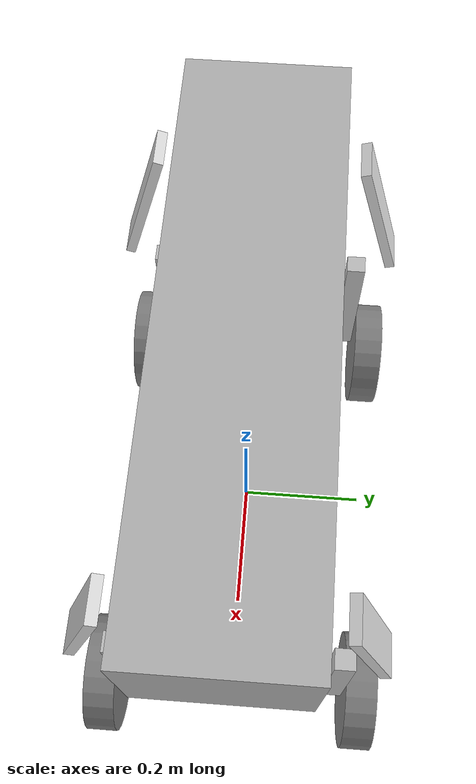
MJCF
<mujoco model="m1_wheeled_sym">
  <compiler angle="radian" autolimits="true" />
  <worldbody>
    <body name="base_link" pos="0 0 0.5">
      <inertial pos="-0.001406 0 -0.004835" quat="4.857226e-15 0.99999994 -1.9917973e-18 0.00035909666" mass="17.033" diaginertia="0.092882565 0.6618583 0.69585856" />
      <freejoint />
      <site name="imu" pos="0.0 0 0.0" />
      <body name="FAR_ABAD_LINK" pos="0.2698 -0.065 0">
        <inertial pos="0.033776 -0.02146 9.6941e-07" quat="0.351949 0.351975 0.613287 0.613289" mass="0.19789" diaginertia="0.00025478 0.00020921 0.00011958" />
        <joint name="FAR_ABAD_JOINT" pos="0 0 0" axis="1 0 0" range="-0.697 0.523" actuatorfrcrange="-150 150" damping="0.05" armature="0.01" />
        <body name="FAR_HIP_LINK" pos="0.0587 -0.045 0">
          <inertial pos="-3.2e-05 -0.065021 -0.128154" quat="0.703257 -0.0677607 0.068164 0.704409" mass="2.8754" diaginertia="0.0456037 0.045202 0.00275532" />
          <joint name="FAR_HIP_JOINT" pos="0 0 0" axis="0 1 0" range="-2.442 2.791" actuatorfrcrange="-150 150" damping="0.05" armature="0.01" />
          <geom size="0.03 0.0075 0.11" pos="0 -0.07 -0.1" quat="0.988771 -0.149438 0 0" type="box" rgba="0.84706 0.84706 0.84706 1" />
          <body name="FAR_KNEE_LINK" pos="0 -0.0522 -0.26">
            <inertial pos="1.1e-05 0.004286 -0.115691" quat="0.707101 -0.000811046 0.000666189 0.707112" mass="0.86312" diaginertia="0.01053 0.01024 0.000477956" />
            <joint name="FAR_KNEE_JOINT" pos="0 0 0" axis="0 1 0" range="-2.791 2.791" actuatorfrcrange="-150 150" damping="0.05" armature="0.01" />
            <geom size="0.015 0.015 0.11" pos="0.005 0 -0.09" quat="0.99995 0 -0.00999983 0" type="box" rgba="0.75294 0.75294 0.75294 1" />
            <body name="FAR_FOOT_LINK" pos="0 -0.0088 -0.28">
              <inertial pos="0 -0.039394 4.2e-05" quat="0.5 0.5 0.5 0.5" mass="1.5113" diaginertia="0.004202 0.002606 0.002603" />
              <joint name="FAR_FOOT_JOINT" pos="0 0 0" axis="0 1 0" range="-99999 99999" actuatorfrcrange="-40 40" damping="0.05" armature="0.01" />
              <geom name="FAR_wheel" type="cylinder" size="0.096 0.025" quat="0.7071068 0.7071068 0 0" pos="0 -0.0394 0" friction="0.8 0.02 0.01" condim="6" priority="1" solref="0.05 1" />
            </body>
          </body>
        </body>
      </body>
      <body name="FBL_ABAD_LINK" pos="0.2698 0.065 0">
        <inertial pos="0.033776 0.02146 9.6941e-07" quat="0.351949 -0.351975 0.613287 -0.613289" mass="0.19789" diaginertia="0.00025478 0.00020921 0.00011958" />
        <joint name="FBL_ABAD_JOINT" pos="0 -0 0" axis="1 0 0" range="-0.523 0.697" actuatorfrcrange="-150 150" damping="0.05" armature="0.01" />
        <body name="FBL_HIP_LINK" pos="0.0587 0.045 0">
          <inertial pos="-3.2e-05 0.065021 -0.128154" quat="0.703257 0.0677607 0.068164 -0.704409" mass="2.8754" diaginertia="0.0456037 0.045202 0.00275532" />
          <joint name="FBL_HIP_JOINT" pos="0 -0 0" axis="0 1 0" range="-2.442 2.791" actuatorfrcrange="-150 150" damping="0.05" armature="0.01" />
          <geom size="0.03 0.0075 0.11" pos="0 0.07 -0.1" quat="0.988771 0.149438 0 -0" type="box" rgba="0.84706 0.84706 0.84706 1" />
          <body name="FBL_KNEE_LINK" pos="0 0.0522 -0.26">
            <inertial pos="1.1e-05 -0.004286 -0.115691" quat="0.707101 0.000811046 0.000666189 -0.707112" mass="0.86312" diaginertia="0.01053 0.01024 0.000477956" />
            <joint name="FBL_KNEE_JOINT" pos="0 -0 0" axis="0 1 0" range="-2.791 2.791" actuatorfrcrange="-150 150" damping="0.05" armature="0.01" />
            <geom size="0.015 0.015 0.11" pos="0.005 -0 -0.09" quat="0.99995 -0 -0.00999983 -0" type="box" rgba="0.75294 0.75294 0.75294 1" />
            <body name="FBL_FOOT_LINK" pos="0 0.0088 -0.28">
              <inertial pos="0 0.039394 4.2e-05" quat="0.5 -0.5 0.5 -0.5" mass="1.5113" diaginertia="0.004202 0.002606 0.002603" />
              <joint name="FBL_FOOT_JOINT" pos="0 -0 0" axis="0 1 0" range="-99999 99999" actuatorfrcrange="-40 40" damping="0.05" armature="0.01" />
              <geom name="FBL_wheel" type="cylinder" size="0.096 0.025" quat="0.7071068 -0.7071068 0 -0" pos="0 0.0394 0" friction="0.8 0.02 0.01" condim="6" priority="1" solref="0.05 1" />
            </body>
          </body>
        </body>
      </body>
      <body name="RAR_ABAD_LINK" pos="-0.2698 -0.065 0">
        <inertial pos="-0.033776 -0.02146 9.6918e-07" quat="0.351949 -0.351975 0.613287 -0.613289" mass="0.19789" diaginertia="0.00025478 0.00020921 0.00011958" />
        <joint name="RAR_ABAD_JOINT" pos="0 -0 0" axis="1 0 0" range="-0.697 0.523" actuatorfrcrange="-150 150" damping="0.05" armature="0.01" />
        <body name="RAR_HIP_LINK" pos="-0.0587 -0.045 0">
          <inertial pos="3.7e-05 -0.065021 -0.128154" quat="0.702733 -0.067692 -0.0682323 -0.704931" mass="2.8754" diaginertia="0.0456037 0.045202 0.00275532" />
          <joint name="RAR_HIP_JOINT" pos="0 -0 0" axis="0 1 0" range="-2.791 2.442" actuatorfrcrange="-150 150" damping="0.05" armature="0.01" />
          <geom size="0.03 0.0075 0.11" pos="0 -0.07 -0.1" quat="0.988771 -0.149438 0 -0" type="box" rgba="0.84706 0.84706 0.84706 1" />
          <body name="RAR_KNEE_LINK" pos="1.1131e-05 -0.0522 -0.26" quat="1 -0 -2.14055e-05 -0">
            <inertial pos="-1.1e-05 0.004286 -0.115691" quat="0.707101 -0.000811046 -0.000666189 -0.707112" mass="0.86312" diaginertia="0.01053 0.01024 0.000477956" />
            <joint name="RAR_KNEE_JOINT" pos="0 -0 0" axis="0 1 0" range="-2.791 2.791" actuatorfrcrange="-150 150" damping="0.05" armature="0.01" />
            <geom size="0.015 0.015 0.11" pos="0.005 -0 -0.09" quat="0.99995 -0 -0.00999983 -0" type="box" rgba="0.752941 0.752941 0.752941 1" />
            <body name="RAR_FOOT_LINK" pos="0 -0.0088 -0.28">
              <inertial pos="0 -0.039394 4.186e-05" quat="0.5 -0.5 0.5 -0.5" mass="1.5113" diaginertia="0.004202 0.002606 0.002603" />
              <joint name="RAR_FOOT_JOINT" pos="0 -0 0" axis="0 1 0" range="-99999 99999" actuatorfrcrange="-40 40" damping="0.05" armature="0.01" />
              <geom name="RAR_wheel" type="cylinder" size="0.096 0.025" quat="0.7071068 -0.7071068 0 -0" pos="0 -0.0394 0" friction="0.8 0.02 0.01" condim="6" priority="1" solref="0.05 1" />
            </body>
          </body>
        </body>
      </body>
      <body name="RBL_ABAD_LINK" pos="-0.2698 0.065 0">
        <inertial pos="-0.033776 0.02146 9.6918e-07" quat="0.351949 0.351975 0.613287 0.613289" mass="0.19789" diaginertia="0.00025478 0.00020921 0.00011958" />
        <joint name="RBL_ABAD_JOINT" pos="0 0 0" axis="1 0 0" range="-0.523 0.697" actuatorfrcrange="-150 150" damping="0.05" armature="0.01" />
        <body name="RBL_HIP_LINK" pos="-0.0587 0.045 0">
          <inertial pos="3.7e-05 0.065021 -0.128154" quat="0.702733 0.067692 -0.0682323 0.704931" mass="2.8754" diaginertia="0.0456037 0.045202 0.00275532" />
          <joint name="RBL_HIP_JOINT" pos="0 0 0" axis="0 1 0" range="-2.791 2.442" actuatorfrcrange="-150 150" damping="0.05" armature="0.01" />
          <geom size="0.03 0.0075 0.11" pos="0 0.07 -0.1" quat="0.988771 0.149438 0 0" type="box" rgba="0.84706 0.84706 0.84706 1" />
          <body name="RBL_KNEE_LINK" pos="1.1131e-05 0.0522 -0.26" quat="1 0 -2.14055e-05 0">
            <inertial pos="-1.1e-05 -0.004286 -0.115691" quat="0.707101 0.000811046 -0.000666189 0.707112" mass="0.86312" diaginertia="0.01053 0.01024 0.000477956" />
            <joint name="RBL_KNEE_JOINT" pos="0 0 0" axis="0 1 0" range="-2.791 2.791" actuatorfrcrange="-150 150" damping="0.05" armature="0.01" />
            <geom size="0.015 0.015 0.11" pos="0.005 0 -0.09" quat="0.99995 0 -0.00999983 0" type="box" rgba="0.752941 0.752941 0.752941 1" />
            <body name="RBL_FOOT_LINK" pos="0 0.0088 -0.28">
              <inertial pos="0 0.039394 4.186e-05" quat="0.5 0.5 0.5 0.5" mass="1.5113" diaginertia="0.004202 0.002606 0.002603" />
              <joint name="RBL_FOOT_JOINT" pos="0 0 0" axis="0 1 0" range="-99999 99999" actuatorfrcrange="-40 40" damping="0.05" armature="0.01" />
              <geom name="RBL_wheel" type="cylinder" size="0.096 0.025" quat="0.7071068 0.7071068 0 0" pos="0 0.0394 0" friction="0.8 0.02 0.01" condim="6" priority="1" solref="0.05 1" />
            </body>
          </body>
        </body>
      </body>
      <geom name="base_box" type="box" size="0.41665 0.1151 0.1041" pos="0 0 -0.02" rgba="0.7 0.7 0.7 1" />
    </body>
  </worldbody>
  <actuator>
    <motor name="FAR_ABAD_LINK" joint="FAR_ABAD_JOINT" ctrlrange="-40 40" ctrllimited="true" />
    <motor name="FAR_HIP_LINK" joint="FAR_HIP_JOINT" ctrlrange="-60 60" ctrllimited="true" />
    <motor name="FAR_KNEE_LINK" joint="FAR_KNEE_JOINT" ctrlrange="-60 60" ctrllimited="true" />
    <motor name="FAR_FOOT_LINK" joint="FAR_FOOT_JOINT" ctrlrange="-20 20" ctrllimited="true" />
    <motor name="FBL_ABAD_LINK" joint="FBL_ABAD_JOINT" ctrlrange="-40 40" ctrllimited="true" />
    <motor name="FBL_HIP_LINK" joint="FBL_HIP_JOINT" ctrlrange="-60 60" ctrllimited="true" />
    <motor name="FBL_KNEE_LINK" joint="FBL_KNEE_JOINT" ctrlrange="-60 60" ctrllimited="true" />
    <motor name="FBL_FOOT_LINK" joint="FBL_FOOT_JOINT" ctrlrange="-20 20" ctrllimited="true" />
    <motor name="RAR_ABAD_LINK" joint="RAR_ABAD_JOINT" ctrlrange="-40 40" ctrllimited="true" />
    <motor name="RAR_HIP_LINK" joint="RAR_HIP_JOINT" ctrlrange="-60 60" ctrllimited="true" />
    <motor name="RAR_KNEE_LINK" joint="RAR_KNEE_JOINT" ctrlrange="-60 60" ctrllimited="true" />
    <motor name="RAR_FOOT_LINK" joint="RAR_FOOT_JOINT" ctrlrange="-20 20" ctrllimited="true" />
    <motor name="RBL_ABAD_LINK" joint="RBL_ABAD_JOINT" ctrlrange="-40 40" ctrllimited="true" />
    <motor name="RBL_HIP_LINK" joint="RBL_HIP_JOINT" ctrlrange="-60 60" ctrllimited="true" />
    <motor name="RBL_KNEE_LINK" joint="RBL_KNEE_JOINT" ctrlrange="-60 60" ctrllimited="true" />
    <motor name="RBL_FOOT_LINK" joint="RBL_FOOT_JOINT" ctrlrange="-20 20" ctrllimited="true" />
  </actuator>
  <sensor>
    <accelerometer name="imu_acc" site="imu" />
    <gyro name="imu_gyro" site="imu" />
    <framequat name="base_quat" objtype="site" objname="imu" />
    <framelinvel name="base_linvel" objtype="site" objname="imu" />
  </sensor>
  <keyframe>
    <key name="stand" qpos="0 0 0.42 1 0 0 0 0 0.8 -1.5 0 0 0.8 -1.5 0 0 0.8 -1.5 0 0 0.8 -1.5 0" />
  </keyframe>
</mujoco>
